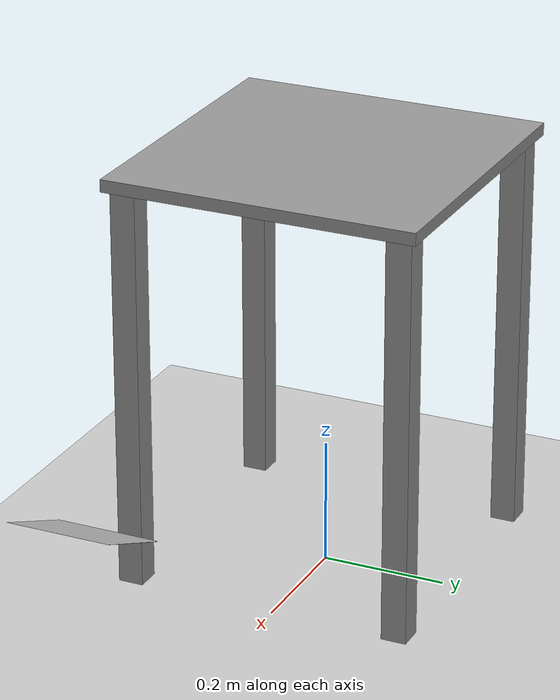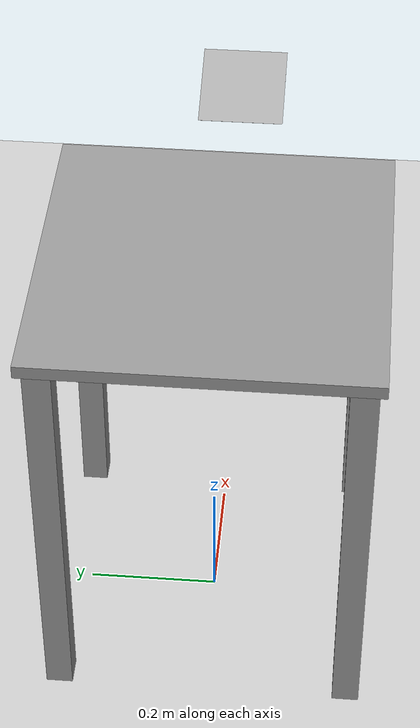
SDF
<sdf version="1.7">
 <world name="ur3_cubes">
  <gravity>0 0 0</gravity>
  <physics name="default_physics" default="0" type="ode">
   <max_step_size>0.001</max_step_size>
   <real_time_factor>1</real_time_factor>
   <real_time_update_rate>1000</real_time_update_rate>
  </physics>
  <plugin name="ros_link_attacher_plugin" filename="libgazebo_ros_link_attacher.so"/>
  <scene><ambient>0.4 0.4 0.4 1</ambient><background>0.4 0.43 0.67 1</background><shadows>1</shadows></scene>
  <light name="sun" type="directional">
   <pose>0 0 10 0 -0 0</pose>
   <diffuse>0.8 0.8 0.8 1</diffuse>
   <specular>0.2 0.2 0.2 1</specular>
   <attenuation>
    <range>1000</range>
    <constant>0.9</constant>
    <linear>0.01</linear>
    <quadratic>0.001</quadratic>
   </attenuation>
   <direction>-0.5 0.1 -0.9</direction>
   <spot><inner_angle>0</inner_angle><outer_angle>0</outer_angle><falloff>0</falloff></spot>
  </light>
  <model name="floor">
   <static>1</static>
   <link name="link">
    <collision name="collision">
     <geometry><plane><normal>0 0 1</normal><size>10 10</size></plane></geometry>
     <surface>
      <contact><collide_bitmask>65535</collide_bitmask></contact>
      <friction><ode><mu>100</mu><mu2>50</mu2></ode></friction>
     </surface>
    </collision>
    <visual name="visual">
     <cast_shadows>0</cast_shadows>
     <geometry><plane><normal>0 0 1</normal><size>100 100</size></plane></geometry>
     <material>
      <script><uri>model://floor/materials/scripts/checkboard.material</uri><name>CheckerTexture</name></script>
     </material>
    </visual>
   </link>
  </model>
  <model name="ur_base">
   <frame name="ur_base::__model__" attached_to="ur_base::top_plate">
    <pose relative_to="__model__">0 0 0 0 -0 0</pose>
   </frame>
   <static>1</static>
   <link name="ur_base::top_plate">
    <pose relative_to="ur_base::__model__">0 0 0.67501 0 -0 0</pose>
    <collision name="top_plate_collision">
     <geometry><box><size>0.5 0.5 0.02</size></box></geometry>
     <surface><contact><collide_bitmask>1</collide_bitmask></contact></surface>
    </collision>
    <visual name="top_plate_visual">
     <geometry><box><size>0.5 0.5 0.02</size></box></geometry>
     <material>
      <script><uri>model://media/materials/scripts/gazebo.material</uri><name>Gazebo/Grey</name></script>
     </material>
    </visual>
   </link>
   <link name="ur_base::leg1">
    <pose relative_to="ur_base::__model__">0.22 0.22 0.35 0 -0 0</pose>
    <visual name="leg1_visual">
     <geometry><box><size>0.04 0.04 0.655</size></box></geometry>
     <material>
      <script><uri>model://media/materials/scripts/gazebo.material</uri><name>Gazebo/Grey</name></script>
     </material>
    </visual>
   </link>
   <link name="ur_base::leg2">
    <pose relative_to="ur_base::__model__">-0.22 0.22 0.35 0 -0 0</pose>
    <visual name="leg2_visual">
     <geometry><box><size>0.04 0.04 0.655</size></box></geometry>
     <material>
      <script><uri>model://media/materials/scripts/gazebo.material</uri><name>Gazebo/Grey</name></script>
     </material>
    </visual>
   </link>
   <link name="ur_base::leg3">
    <pose relative_to="ur_base::__model__">0.22 -0.22 0.35 0 -0 0</pose>
    <visual name="leg3_visual">
     <geometry><box><size>0.04 0.04 0.655</size></box></geometry>
     <material>
      <script><uri>model://media/materials/scripts/gazebo.material</uri><name>Gazebo/Grey</name></script>
     </material>
    </visual>
   </link>
   <link name="ur_base::leg4">
    <pose relative_to="ur_base::__model__">-0.22 -0.22 0.35 0 -0 0</pose>
    <visual name="leg4_visual">
     <geometry><box><size>0.04 0.04 0.655</size></box></geometry>
     <material>
      <script><uri>model://media/materials/scripts/gazebo.material</uri><name>Gazebo/Grey</name></script>
     </material>
    </visual>
   </link>
  </model>
  <magnetic_field>6e-06 2.3e-05 -4.2e-05</magnetic_field>
  <atmosphere type="adiabatic"/>
  <spherical_coordinates>
   <surface_model>EARTH_WGS84</surface_model>
   <latitude_deg>0</latitude_deg>
   <longitude_deg>0</longitude_deg>
   <elevation>0</elevation>
   <heading_deg>0</heading_deg>
  </spherical_coordinates>
  <model name="aruco_marker">
   <link name="link">
    <visual name="front_visual">
     <pose>5e-05 0 0 0 -0 0</pose>
     <geometry><box><size>0.0001 0.15 0.15</size></box></geometry>
     <material>
      <script>
       <uri>model://aruco_marker/materials/scripts</uri>
       <uri>model://aruco_marker/materials/textures</uri>
       <name>Marker</name>
      </script>
     </material>
    </visual>
    <visual name="rear_visual">
     <pose>-5e-05 0 0 0 -0 0</pose>
     <geometry><box><size>0.0001 0.15 0.15</size></box></geometry>
    </visual>
    <inertial>
     <inertia><ixx>1</ixx><ixy>0</ixy><ixz>0</ixz><iyy>1</iyy><iyz>0</iyz><izz>1</izz></inertia>
     <mass>1</mass>
    </inertial>
   </link>
   <pose>0.803087 0.015244 0.424562 3.14159 -1.15983 3.14159</pose>
  </model>
 </world>
</sdf>
